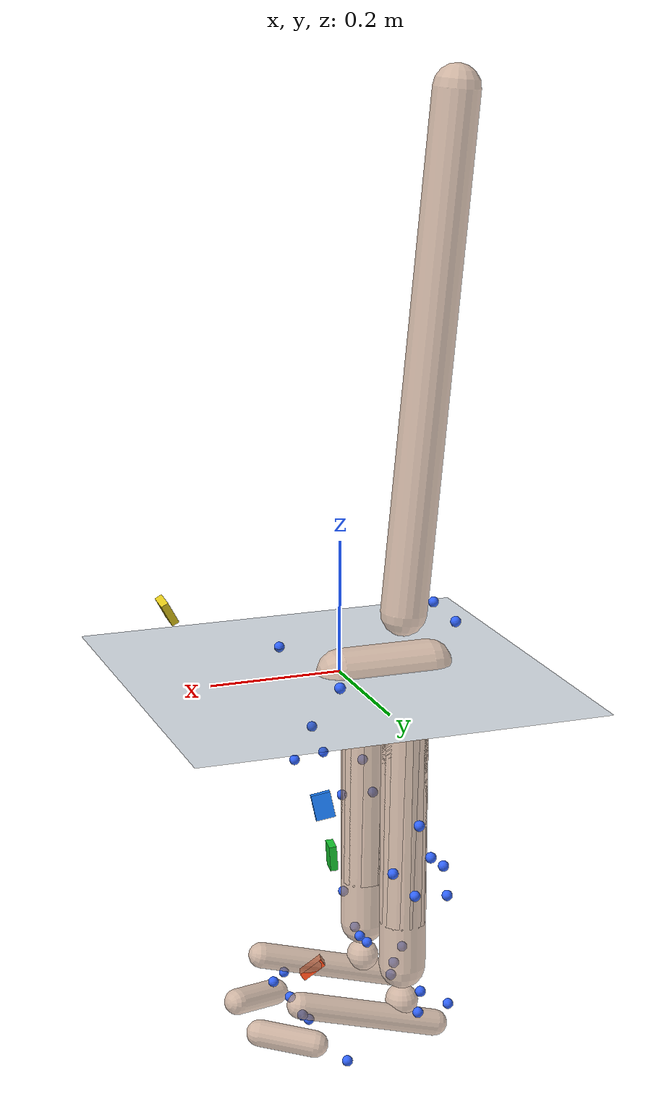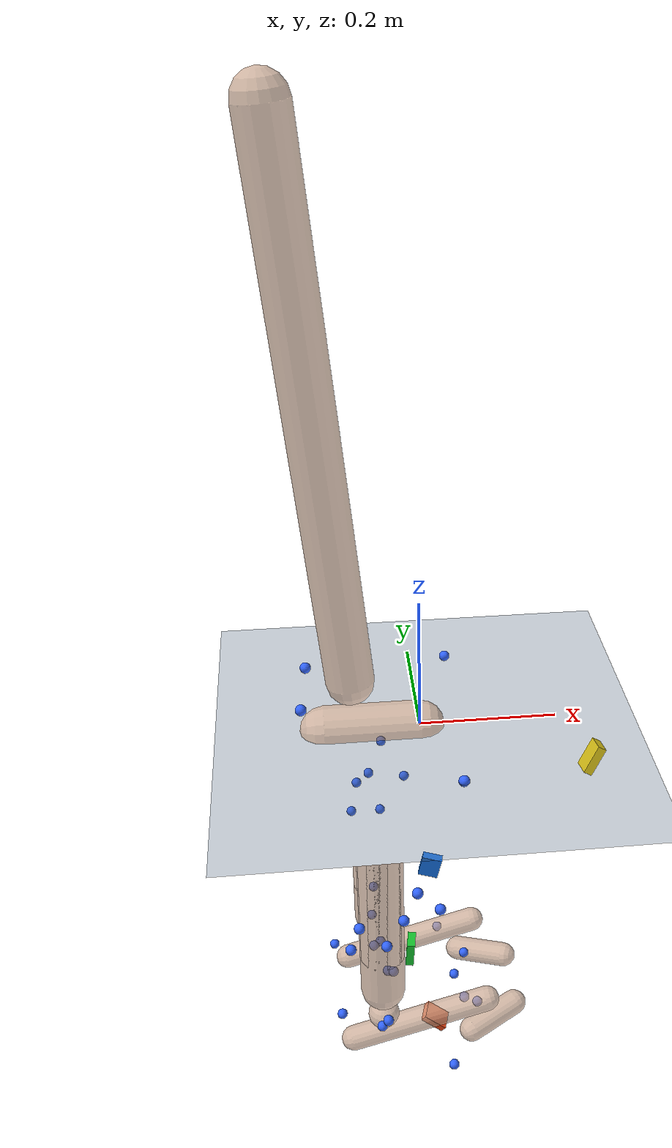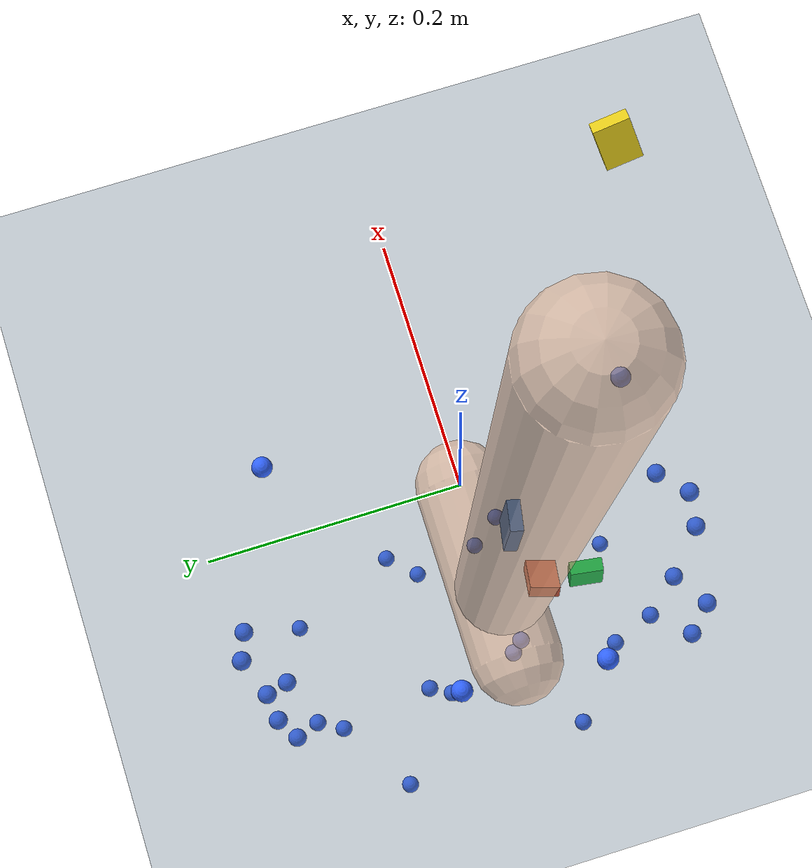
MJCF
<mujoco model="AB15">
  <compiler angle="radian" autolimits="true"/>
  <option timestep="0.005" gravity="0 0 -9.81"><flag contact="disable"/></option>
  <visual><global offwidth="1280" offheight="720"/></visual>
  <default><joint limited="false" damping="0"/><geom contype="0" conaffinity="0"/></default>
  <asset>
    <texture name="grid" type="2d" builtin="checker" rgb1="0.2 0.3 0.4" rgb2="0.3 0.4 0.5" width="512" height="512"/>
    <material name="grid" texture="grid" texrepeat="2 2" texuniform="true"/>
    <material name="skin" rgba="0.8 0.65 0.55 0.7"/>
  </asset>
  <worldbody>
    <light pos="0 0 4" dir="0 0 -1"/>
    <geom name="floor" type="plane" size="0 0 0.05" material="grid"/>
    <body name="pelvis" pos="0 0 0" quat="1 0 0 0">
      <joint name="pelvis_tx" type="slide" axis="1 0 0"/>
      <joint name="pelvis_ty" type="slide" axis="0 0 1"/>
      <joint name="pelvis_tz" type="slide" axis="0 -1 0"/>
      <joint name="pelvis_tilt" type="hinge" axis="0 -1 0"/>
      <joint name="pelvis_list" type="hinge" axis="1 0 0"/>
      <joint name="pelvis_rotation" type="hinge" axis="0 0 1"/>
      <inertial pos="-0.070405409 0 0" mass="15.1838" diaginertia="0.15183756 0.15183756 0.15183756"/>
      <geom type="capsule" fromto="0 0 0 -0.14081082 0 0" size="0.035" material="skin" mass="0"/>
      <site name="m_R_ASIS" pos="0.045681783 -0.14368094 -0.00050951685" size="0.008" rgba="0.2 0.4 1 1" group="2"/>
      <site name="m_L_ASIS" pos="0.051939939 0.14032776 0.02622468" size="0.008" rgba="0.2 0.4 1 1" group="2"/>
      <site name="m_L_PSIS" pos="-0.16270933 0.050413967 0.075718955" size="0.008" rgba="0.2 0.4 1 1" group="2"/>
      <site name="m_R_PSIS" pos="-0.17168138 -0.056377954 0.074213581" size="0.008" rgba="0.2 0.4 1 1" group="2"/>
      <body name="femur_r" pos="-0.070405409 -0.083152074 -0.065824576" quat="1 0 0 0">
        <joint name="hip_flexion_r" type="hinge" axis="0 -1 0"/>
        <joint name="hip_adduction_r" type="hinge" axis="1 0 0"/>
        <joint name="hip_rotation_r" type="hinge" axis="0 0 1"/>
        <inertial pos="0 0 -0.15482401" mass="11.992" diaginertia="0.11992034 0.11992034 0.11992034"/>
        <geom type="capsule" fromto="0 0 0 0 0 -0.30964801" size="0.035" material="skin" mass="0"/>
        <site name="m_R_Thigh_Upper" pos="0.045856362 -0.10865841 -0.088879065" size="0.008" rgba="0.2 0.4 1 1" group="2"/>
        <site name="m_R_Thigh_Front" pos="0.079731243 -0.094871997 -0.13562143" size="0.008" rgba="0.2 0.4 1 1" group="2"/>
        <site name="m_R_Thigh_Rear" pos="0.025570245 -0.11221768 -0.13552686" size="0.008" rgba="0.2 0.4 1 1" group="2"/>
        <site name="m_R_Knee_Lat" pos="0.001817986 -0.08337012 -0.36623417" size="0.008" rgba="0.2 0.4 1 1" group="2"/>
        <site name="m_R_Knee_Med" pos="0.011138818 0.048097652 -0.39595541" size="0.008" rgba="0.2 0.4 1 1" group="2"/>
        <site name="imu_thigh" type="box" size="0.02 0.015 0.006" pos="0.079250983 0.033817571 -0.1640347" quat="0.54924121 0.53106003 -0.54017161 0.35287955" rgba="0.1 0.5 1 1" group="1"/>
        <body name="tibia_r" pos="0 0 0" quat="1 0 0 0">
          <joint name="knee_r_translation1" type="slide" axis="1 0 0"/>
          <joint name="knee_r_translation2" type="slide" axis="0 0 1"/>
          <joint name="knee_angle_r" type="hinge" axis="0 -1 0"/>
          <inertial pos="0 0 -0.19105773" mass="4.77998" diaginertia="0.047799757 0.047799757 0.047799757"/>
          <geom type="capsule" fromto="0 0 0 0 0 -0.38211546" size="0.035" material="skin" mass="0"/>
          <site name="m_R_Shank_Upper" pos="-0.037257783 -0.10269807 -0.15302491" size="0.008" rgba="0.2 0.4 1 1" group="2"/>
          <site name="m_R_Shank_Front" pos="0.0018492339 -0.091024596 -0.20349314" size="0.008" rgba="0.2 0.4 1 1" group="2"/>
          <site name="m_R_Shank_Rear" pos="-0.050458984 -0.090268938 -0.20559178" size="0.008" rgba="0.2 0.4 1 1" group="2"/>
          <site name="m_R_Ankle_Lat" pos="-0.0056238593 -0.049797174 -0.41507894" size="0.008" rgba="0.2 0.4 1 1" group="2"/>
          <site name="m_R_Ankle_Med" pos="0.019411138 0.038144566 -0.388534" size="0.008" rgba="0.2 0.4 1 1" group="2"/>
          <site name="imu_shank" type="box" size="0.02 0.015 0.006" pos="0.042195111 -0.027271906 -0.27552542" quat="0.6793977 0.050013728 0.72990416 -0.056189919" rgba="0.1 0.8 0.2 1" group="1"/>
          <body name="talus_r" pos="0 0 -0.44003655" quat="1 0 0 0">
            <joint name="ankle_angle_r" type="hinge" axis="-0.10501355 -0.97912632 -0.17402245"/>
            <inertial pos="0 0 0" mass="0.128927" diaginertia="0.0012892719 0.0012892719 0.0012892719"/>
            <geom type="sphere" size="0.025" material="skin" mass="0"/>
            <body name="calcn_r" pos="-0.049908331 -0.0081048592 -0.042929147" quat="1 0 0 0">
              <joint name="subtalar_angle_r" type="hinge" axis="0.78717961 0.12094949 0.60474746"/>
              <inertial pos="0.10789253 0 0.03236776" mass="1.61159" diaginertia="0.016115899 0.016115899 0.016115899"/>
              <geom type="capsule" fromto="0 0 0 0.21578507 0 0.06473552" size="0.02" material="skin" mass="0"/>
              <site name="m_R_Heel" pos="-0.016653397 0.009611224 0.046861817" size="0.008" rgba="0.2 0.4 1 1" group="2"/>
              <site name="m_R_Toe_Lat" pos="0.15536012 -0.067342732 -0.0051330229" size="0.008" rgba="0.2 0.4 1 1" group="2"/>
              <site name="m_R_Toe_Med" pos="0.18728566 0.054244086 0.013622734" size="0.008" rgba="0.2 0.4 1 1" group="2"/>
              <site name="m_R_Toe_Tip" pos="0.20501413 0.027168693 0.029890763" size="0.008" rgba="0.2 0.4 1 1" group="2"/>
              <site name="imu_foot" type="box" size="0.02 0.015 0.006" pos="0.13234327 0.0024106745 0.031038507" quat="0.94115304 0.11414376 0.29779585 -0.11189187" rgba="1 0.3 0.1 1" group="1"/>
              <body name="toes_r" pos="0.19291185 -0.0011652394 -0.0021578507" quat="1 0 0 0">
                <joint name="mtp_angle_r" type="hinge" axis="-0.5809544 -0.81393611 0"/>
                <inertial pos="0.037330817 0.018881193 0.006473552" mass="0.279256" diaginertia="0.002792563 0.002792563 0.002792563"/>
                <geom type="capsule" fromto="0 0 0 0.074661634 0.037762387 0.012947104" size="0.02" material="skin" mass="0"/>
              </body>
            </body>
          </body>
        </body>
      </body>
      <body name="femur_l" pos="-0.070405409 0.083152074 -0.065824576" quat="1 0 0 0">
        <joint name="hip_flexion_l" type="hinge" axis="0 -1 0"/>
        <joint name="hip_adduction_l" type="hinge" axis="-1 0 0"/>
        <joint name="hip_rotation_l" type="hinge" axis="0 0 -1"/>
        <inertial pos="0 0 -0.15482401" mass="11.992" diaginertia="0.11992034 0.11992034 0.11992034"/>
        <geom type="capsule" fromto="0 0 0 0 0 -0.30964801" size="0.035" material="skin" mass="0"/>
        <site name="m_L_Thigh_Upper" pos="0.024212465 0.11989867 -0.10703703" size="0.008" rgba="0.2 0.4 1 1" group="2"/>
        <site name="m_L_Thigh_Front" pos="0.061437092 0.11362916 -0.1781451" size="0.008" rgba="0.2 0.4 1 1" group="2"/>
        <site name="m_L_Thigh_Rear" pos="0.0011785803 0.10927111 -0.16355171" size="0.008" rgba="0.2 0.4 1 1" group="2"/>
        <site name="m_L_Knee_Lat" pos="0.0017369514 0.077998067 -0.38998471" size="0.008" rgba="0.2 0.4 1 1" group="2"/>
        <site name="m_L_Knee_Med" pos="-0.0071238484 -0.051767436 -0.40324329" size="0.008" rgba="0.2 0.4 1 1" group="2"/>
        <body name="tibia_l" pos="0 0 0" quat="1 0 0 0">
          <joint name="knee_l_translation1" type="slide" axis="1 0 0"/>
          <joint name="knee_l_translation2" type="slide" axis="0 0 1"/>
          <joint name="knee_angle_l" type="hinge" axis="0 -1 0"/>
          <inertial pos="0 0 -0.19105773" mass="4.77998" diaginertia="0.047799757 0.047799757 0.047799757"/>
          <geom type="capsule" fromto="0 0 0 0 0 -0.38211546" size="0.035" material="skin" mass="0"/>
          <site name="m_L_Shank_Upper" pos="-0.019750705 0.10695539 -0.18047781" size="0.008" rgba="0.2 0.4 1 1" group="2"/>
          <site name="m_L_Shank_Front" pos="0.01789284 0.091680077 -0.22888527" size="0.008" rgba="0.2 0.4 1 1" group="2"/>
          <site name="m_L_Shank_Rear" pos="-0.030655567 0.096705916 -0.23271745" size="0.008" rgba="0.2 0.4 1 1" group="2"/>
          <site name="m_L_Ankle_Lat" pos="-0.0039316296 0.056219871 -0.43556599" size="0.008" rgba="0.2 0.4 1 1" group="2"/>
          <site name="m_L_Ankle_Med" pos="0.0049709892 -0.032995007 -0.412979" size="0.008" rgba="0.2 0.4 1 1" group="2"/>
          <body name="talus_l" pos="0 0 -0.44003655" quat="1 0 0 0">
            <joint name="ankle_angle_l" type="hinge" axis="0.10501355 -0.97912632 0.17402245"/>
            <inertial pos="0 0 0" mass="0.128927" diaginertia="0.0012892719 0.0012892719 0.0012892719"/>
            <geom type="sphere" size="0.025" material="skin" mass="0"/>
            <body name="calcn_l" pos="-0.049908331 0.0081048592 -0.042929147" quat="1 0 0 0">
              <joint name="subtalar_angle_l" type="hinge" axis="-0.78717961 0.12094949 -0.60474746"/>
              <inertial pos="0.10789253 0 0.03236776" mass="1.61159" diaginertia="0.016115899 0.016115899 0.016115899"/>
              <geom type="capsule" fromto="0 0 0 0.21578507 0 0.06473552" size="0.02" material="skin" mass="0"/>
              <site name="m_L_Heel" pos="-0.021984784 0.002661055 0.029003824" size="0.008" rgba="0.2 0.4 1 1" group="2"/>
              <site name="m_L_Toe_Lat" pos="0.16307094 0.061116194 -0.0055682555" size="0.008" rgba="0.2 0.4 1 1" group="2"/>
              <site name="m_L_Toe_Med" pos="0.17832258 -0.066066006 0.0037515547" size="0.008" rgba="0.2 0.4 1 1" group="2"/>
              <site name="m_L_Toe_Tip" pos="0.19795374 -0.040260221 0.026708081" size="0.008" rgba="0.2 0.4 1 1" group="2"/>
              <body name="toes_l" pos="0.19291185 0.0011652394 -0.0021578507" quat="1 0 0 0">
                <joint name="mtp_angle_l" type="hinge" axis="0.5809544 -0.81393611 0"/>
                <inertial pos="0.037330817 -0.018881193 0.006473552" mass="0.279256" diaginertia="0.002792563 0.002792563 0.002792563"/>
                <geom type="capsule" fromto="0 0 0 0.074661634 -0.037762387 0.012947104" size="0.02" material="skin" mass="0"/>
              </body>
            </body>
          </body>
        </body>
      </body>
      <body name="torso" pos="-0.10028041 0 0.081160407" quat="1 0 0 0">
        <joint name="lumbar_extension" type="hinge" axis="0 -1 0"/>
        <joint name="lumbar_bending" type="hinge" axis="1 0 0"/>
        <joint name="lumbar_rotation" type="hinge" axis="0 0 1"/>
        <inertial pos="-0.035771642 0 0.38156418" mass="44.1403" diaginertia="0.44140287 0.44140287 0.44140287"/>
        <geom type="capsule" fromto="0 0 0 -0.071543284 0 0.76312836" size="0.035" material="skin" mass="0"/>
        <site name="imu_trunk" type="box" size="0.02 0.015 0.006" pos="0.30957917 -0.19011442 -0.019602612" quat="0.50401387 -0.068742204 0.85840616 -0.066207203" rgba="0.9 0.8 0.1 1" group="1"/>
      </body>
    </body>
  </worldbody>
  <sensor>
<accelerometer name="imu_foot_acc" site="imu_foot"/>
<gyro name="imu_foot_gyr" site="imu_foot"/>
<accelerometer name="imu_shank_acc" site="imu_shank"/>
<gyro name="imu_shank_gyr" site="imu_shank"/>
<accelerometer name="imu_thigh_acc" site="imu_thigh"/>
<gyro name="imu_thigh_gyr" site="imu_thigh"/>
<accelerometer name="imu_trunk_acc" site="imu_trunk"/>
<gyro name="imu_trunk_gyr" site="imu_trunk"/>
</sensor>
</mujoco>
